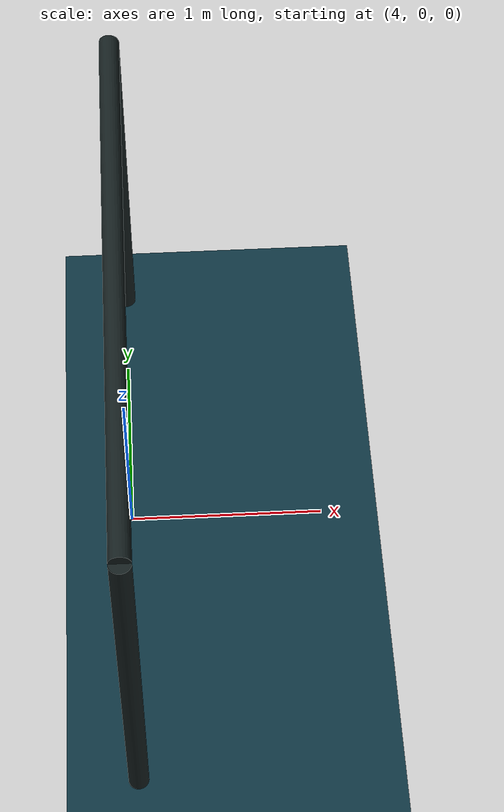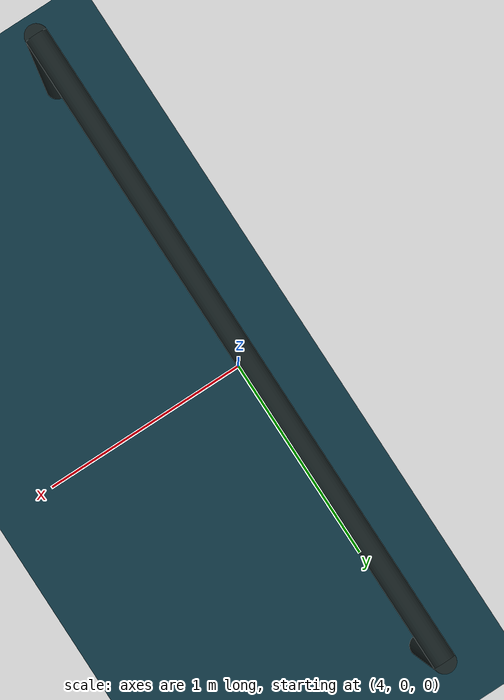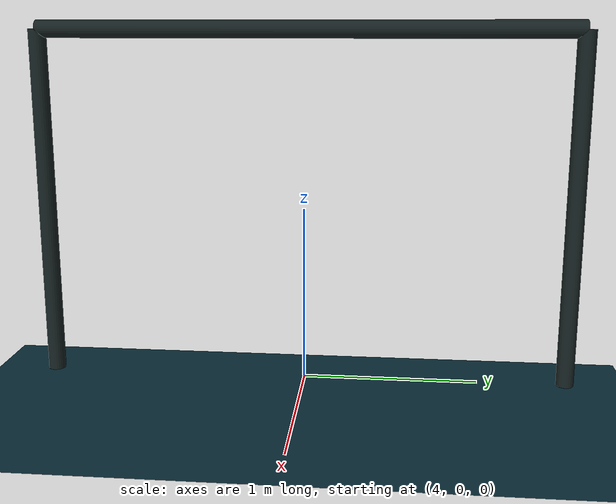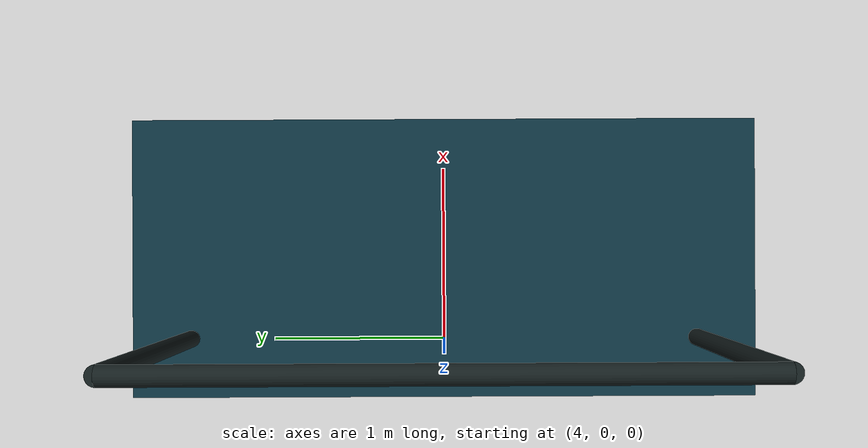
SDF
<?xml version="1.0" ?>
<sdf version="1.9">
  <world name="camera_world">
    <scene><ambient>0.3 0.4 0.5 1</ambient><background>0.0 0.25 0.45 1</background><shadows>true</shadows></scene>
    <plugin filename="gz-sim-physics-system" name="gz::sim::systems::Physics"/>
    <plugin filename="gz-sim-buoyancy-system" name="gz::sim::systems::Buoyancy">
      <uniform_fluid_density>1025.0</uniform_fluid_density>
    </plugin>
    <plugin filename="gz-sim-scene-broadcaster-system" name="gz::sim::systems::SceneBroadcaster"/>
    <plugin filename="gz-sim-user-commands-system" name="gz::sim::systems::UserCommands"/>
    <plugin filename="gz-sim-sensors-system" name="gz::sim::systems::Sensors"><render_engine>ogre2</render_engine></plugin>
    <light type="directional" name="sun"><pose>0 0 10 0 0 0</pose><diffuse>1 1 1 1</diffuse></light>
    <model name="ground_plane"><static>true</static><link name="link"><collision name="collision"><geometry><plane><normal>0 0 1</normal><size>100 100</size></plane></geometry></collision><visual name="visual"><geometry><plane><normal>0 0 1</normal><size>100 100</size></plane></geometry><material><ambient>0.05 0.2 0.25 1</ambient><diffuse>0.05 0.2 0.25 1</diffuse></material></visual></link></model>
    <model name="qual_gate"><static>true</static><pose>4 0 0 0 0 0</pose>
      <link name="left_pole"><pose>0 1.5 1 0 0 0</pose><visual name="visual"><geometry><cylinder><radius>0.05</radius><length>2</length></cylinder></geometry><material><ambient>0.04 0.06 0.06 1</ambient><diffuse>0.08 0.12 0.12 1</diffuse></material></visual></link>
      <link name="right_pole"><pose>0 -1.5 1 0 0 0</pose><visual name="visual"><geometry><cylinder><radius>0.05</radius><length>2</length></cylinder></geometry><material><ambient>0.04 0.06 0.06 1</ambient><diffuse>0.08 0.12 0.12 1</diffuse></material></visual></link>
      <link name="crossbar"><pose>0 0 2 1.5708 0 0</pose><visual name="visual"><geometry><cylinder><radius>0.05</radius><length>3</length></cylinder></geometry><material><ambient>0.04 0.06 0.06 1</ambient><diffuse>0.08 0.12 0.12 1</diffuse></material></visual></link>
    </model>
  </world>
</sdf>
